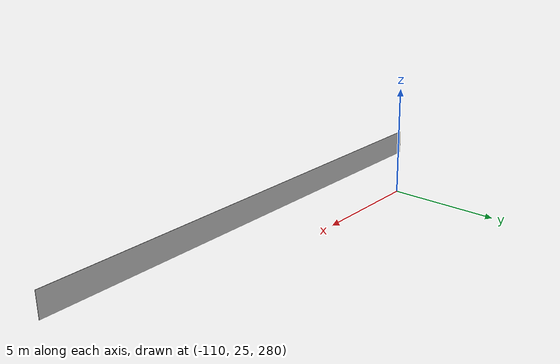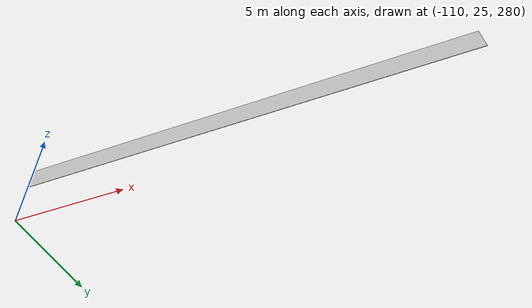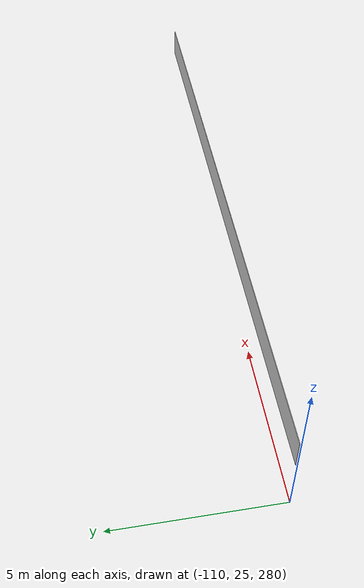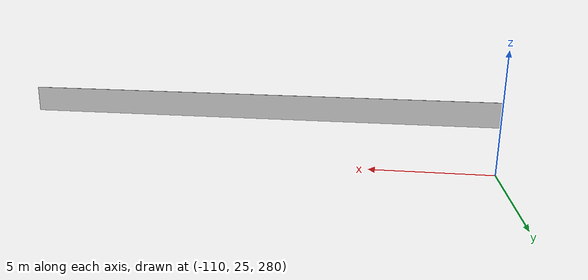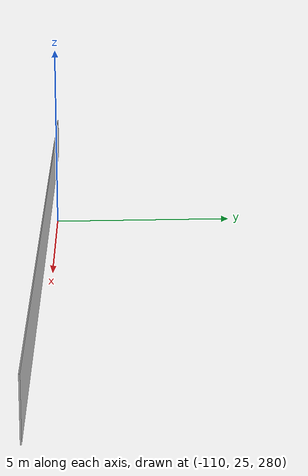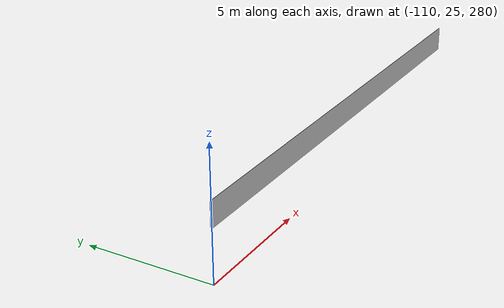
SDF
<?xml version='1.0'?>
<sdf version='1.7'>
    <model name='huldra-mini-walkway'>
        <static>true</static>
        <link name='link0'>
            <visual name="visual0">
                <pose>0 0 0 0 0 0</pose>
                <geometry>
                    <mesh>
                        <uri>model://huldra-models/huldra-mini-walkway/meshes/huldra-mini-walkway.obj</uri>
                    </mesh>
                </geometry>
            </visual>
        </link>
    </model>
</sdf>
